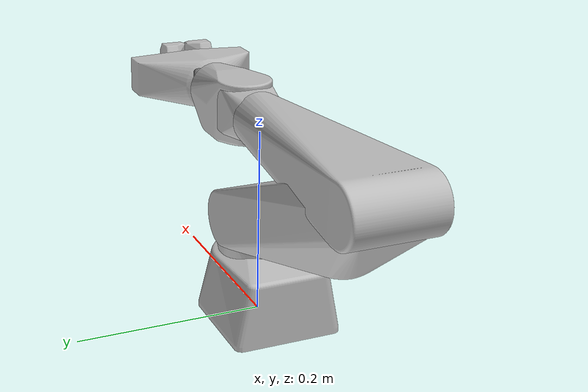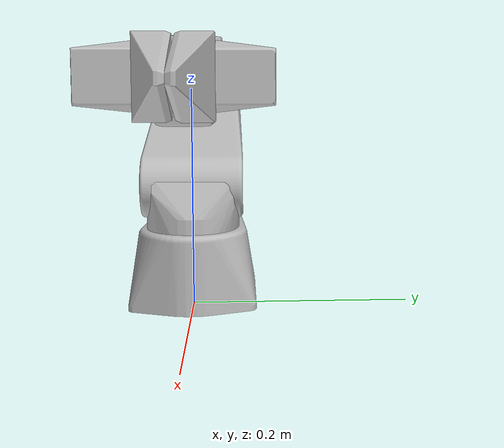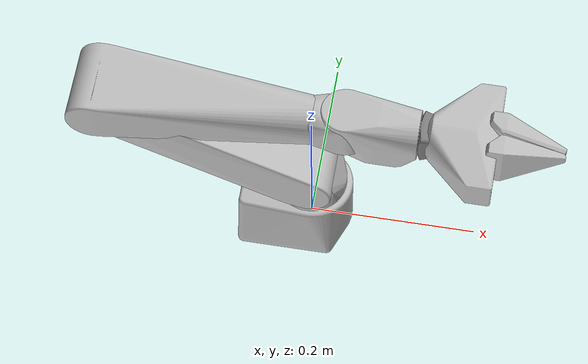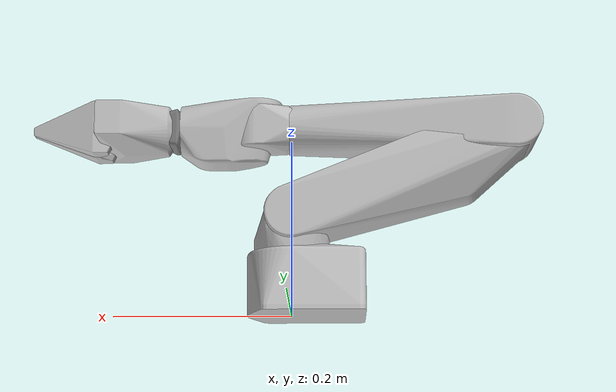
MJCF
<mujoco model="airbot_play_G2">
  <include file="airbot_config.xml"/>
  <tendon>
    <fixed name='gripper_gear'>
      <joint joint='G2_joint1' coef='-14.7059'/>
      <joint joint='G2_joint2' coef=' 14.7059'/>
    </fixed>
  </tendon>
  <equality>
    <joint joint1='G2_joint1' joint2='G2_joint2' polycoef='0 -1 0 0 0 '/>
  </equality>
  <worldbody>
    <geom type="mesh" contype="0" conaffinity="0" group="1" density="0" rgba="0.75294 0.75294 0.75294 1" mesh="base_link"/>
    <body name="link1" pos="0 0 0.1117">
      <inertial pos="5.65823e-05 -0.00254686 -0.0260161" quat="0.425246 0.565393 0.444998 0.549067" mass="0.609" diaginertia="0.000363812 0.000296936 0.000260542"/>
      <joint name="joint1" pos="0 0 0" axis="0 0 1" range="-3.151 2.089" actuatorfrcrange="-12 12"/>
      <geom type="mesh" rgba="0.75294 0.75294 0.75294 1" mesh="link1"/>
      <body name="link2" quat="0.136004 0.135754 -0.693387 0.69447">
        <inertial pos="0.150315 0.00717305 0.00160325" quat="-0.0035835 0.712028 0.029484 0.701523" mass="0.902" diaginertia="0.00338951 0.00317972 0.000396151"/>
        <joint name="joint2" pos="0 0 0" axis="0 0 1" range="-2.963 0.181" actuatorfrcrange="-12 12"/>
        <geom type="mesh" rgba="0.75294 0.75294 0.75294 1" mesh="link2"/>
        <body name="link3" pos="0.27009 0 0" quat="0.55806 -0.000659484 0.000443518 0.8298">
          <inertial pos="2.8745e-05 0.110064 0.00426641" quat="0.536553 0.458503 -0.460051 0.538739" mass="0.683" diaginertia="0.00112874 0.0011117 0.000205631"/>
          <joint name="joint3" pos="0 0 0" axis="0 0 1" range="-0.094 3.161" actuatorfrcrange="-12 12"/>
          <geom type="mesh" rgba="0.75294 0.75294 0.75294 1" mesh="link3"/>
          <body name="link4" pos="8.2128e-05 0.29015 0" quat="0.499998 -0.5 -0.5 -0.500002">
            <inertial pos="-4.38752e-05 0.000502807 -0.020529" quat="0.57802 0.407764 0.553627 0.439452" mass="0.358" diaginertia="0.000140287 0.000111206 0.000110237"/>
            <joint name="joint4" pos="0 0 0" axis="0 0 1" range="-3.012 3.012" actuatorfrcrange="-3 3"/>
            <geom type="mesh" rgba="0.75294 0.75294 0.75294 1" mesh="link4"/>
            <body name="link5" quat="0.707105 0.707108 0 0">
              <inertial pos="0.000107256 0.0376096 0.000942839" quat="0.657602 0.251011 -0.249099 0.665209" mass="0.403" diaginertia="0.00016511 0.000143238 0.000137102"/>
              <joint name="joint5" pos="0 0 0" axis="0 0 1" range="-1.859 1.859" actuatorfrcrange="-3 3"/>
              <geom type="mesh" rgba="0.75294 0.75294 0.75294 1" mesh="link5"/>
              <body name="link6" pos="0 0.0864 0" quat="0.707105 0 0 0.707108">
                <inertial pos="0.0455161 -2.59141e-06 -3.85647e-06" quat="0.500699 0.499028 -0.49836 0.501904" mass="1.00867" diaginertia="449.243 348.37 198.536"/>
                <joint name="joint6" pos="0 0 0" axis="1 0 0" range="-3.017 3.017" actuatorfrcrange="-3 3"/>
                <geom type="mesh" rgba="0.75294 0.75294 0.75294 1" mesh="link6"/>
                <geom pos="0.0040002 0.0219004 -0.0221024" quat="0.707107 0 -0.707107 0" type="mesh" mesh="flange"/>
                <geom pos="0.009 0 0" quat="1 0 0 0" type="mesh" rgba="0.75294 0.75294 0.75294 1" mesh="g2base"/>
                <body name="G2_link1" pos="0.0826 0.05 -0.015" quat="0.707105 0 0.707108 0">
                  <inertial pos="-0.015415 -0.066964 0.014312" quat="0.696231 0.0988988 -0.0674297 0.707767" mass="0.078003" diaginertia="55.8265 34.2061 25.688"/>
                  <joint name="G2_joint1" pos="0 0 0" axis="0 1 0" type="slide" range="-0.034 0" actuatorfrcrange="-3 3"/>
                  <geom type="mesh" rgba="0.75294 0.75294 0.75294 1" mesh="g2link1"/>
                </body>
                <body name="G2_link2" pos="0.0826 -0.05 -0.015" quat="0.707105 0 0.707108 0">
                  <inertial pos="-0.014585 0.066964 0.014312" quat="0.696231 -0.0988988 0.0674297 0.707767" mass="0.078003" diaginertia="55.8265 34.2061 25.688"/>
                  <joint name="G2_joint2" pos="0 0 0" axis="0 1 0" type="slide" range="0 0.034" actuatorfrcrange="-3 3"/>
                  <geom type="mesh" rgba="0.75294 0.75294 0.75294 1" mesh="g2link2"/>
                </body>
              </body>
            </body>
          </body>
        </body>
      </body>
    </body>
  </worldbody>

  <actuator>
    <position name="joint1_position"  ctrllimited="true" ctrlrange="-3.14 2.09"  joint="joint1"        kp="15.0" user="1" forcelimited="true" forcerange="-20 20"/>
    <position name="joint2_position"  ctrllimited="true" ctrlrange="-2.96 0.17"  joint="joint2"        kp="15.0" user="1" forcelimited="true" forcerange="-20 20"/>
    <position name="joint3_position"  ctrllimited="true" ctrlrange="-0.087 3.14" joint="joint3"        kp="15.0" user="1" forcelimited="true" forcerange="-20 20"/>
    <position name="joint4_position"  ctrllimited="true" ctrlrange="-2.96 2.96"  joint="joint4"        kp="2.5"  user="1" forcelimited="true" forcerange="-8 8"/>
    <position name="joint5_position"  ctrllimited="true" ctrlrange="-1.74 1.74"  joint="joint5"        kp="2.5"  user="1" forcelimited="true" forcerange="-8 8"/>
    <position name="joint6_position"  ctrllimited="true" ctrlrange="-3.14 3.14"  joint="joint6"        kp="2.5"  user="1" forcelimited="true" forcerange="-8 8"/>
    <position name='gripper_position' ctrllimited="true" ctrlrange="0. 1."       tendon='gripper_gear' kp="3"    user="1" forcelimited="true" forcerange="-1 1"/>

    <velocity name="joint1_velocity"  ctrllimited="true" ctrlrange="-6.283 6.283" joint="joint1"        kv="0.15"  user="1" forcelimited="true" forcerange="-20 20"/>
    <velocity name="joint2_velocity"  ctrllimited="true" ctrlrange="-6.283 6.283" joint="joint2"        kv="0.175" user="1" forcelimited="true" forcerange="-20 20"/>
    <velocity name="joint3_velocity"  ctrllimited="true" ctrlrange="-6.283 6.283" joint="joint3"        kv="0.15"  user="1" forcelimited="true" forcerange="-20 20"/>
    <velocity name="joint4_velocity"  ctrllimited="true" ctrlrange="-6.283 6.283" joint="joint4"        kv="0.05"  user="1" forcelimited="true" forcerange="-8 8"/>
    <velocity name="joint5_velocity"  ctrllimited="true" ctrlrange="-6.283 6.283" joint="joint5"        kv="0.15"  user="1" forcelimited="true" forcerange="-8 8"/>
    <velocity name="joint6_velocity"  ctrllimited="true" ctrlrange="-6.283 6.283" joint="joint6"        kv="0.05"  user="1" forcelimited="true" forcerange="-8 8"/>
    <velocity name='gripper_velocity' ctrllimited="true" ctrlrange="-6.283 6.283" tendon='gripper_gear' kv="0.05"  user="1" forcelimited="true" forcerange="-1 1"/>

    <motor name="joint1_motor"  ctrllimited="true" ctrlrange="-20 20" joint="joint1"        user="1" forcelimited="true" forcerange="-20 20"/>
    <motor name="joint2_motor"  ctrllimited="true" ctrlrange="-20 20" joint="joint2"        user="1" forcelimited="true" forcerange="-20 20"/>
    <motor name="joint3_motor"  ctrllimited="true" ctrlrange="-20 20" joint="joint3"        user="1" forcelimited="true" forcerange="-20 20"/>
    <motor name="joint4_motor"  ctrllimited="true" ctrlrange="-8 8"   joint="joint4"        user="1" forcelimited="true" forcerange="-8 8"/>
    <motor name="joint5_motor"  ctrllimited="true" ctrlrange="-8 8"   joint="joint5"        user="1" forcelimited="true" forcerange="-8 8"/>
    <motor name="joint6_motor"  ctrllimited="true" ctrlrange="-8 8"   joint="joint6"        user="1" forcelimited="true" forcerange="-8 8"/>
    <motor name='gripper_motor' ctrllimited="true" ctrlrange="-1 1"   tendon='gripper_gear' user="1" forcelimited="true" forcerange="-1 1"/>

  </actuator>

  <sensor>
    <jointpos name="joint1_pos" joint="joint1" />
    <jointpos name="joint2_pos" joint="joint2" />
    <jointpos name="joint3_pos" joint="joint3" />
    <jointpos name="joint4_pos" joint="joint4" />
    <jointpos name="joint5_pos" joint="joint5" />
    <jointpos name="joint6_pos" joint="joint6" />
    <tendonpos name="gripper_pos" tendon="gripper_gear" />
    <jointvel name="joint1_vel" joint="joint1" />
    <jointvel name="joint2_vel" joint="joint2" />
    <jointvel name="joint3_vel" joint="joint3" />
    <jointvel name="joint4_vel" joint="joint4" />
    <jointvel name="joint5_vel" joint="joint5" />
    <jointvel name="joint6_vel" joint="joint6" />
    <tendonvel name="gripper_vel" tendon="gripper_gear" />
    <jointactuatorfrc name="joint1_torque" joint="joint1" />
    <jointactuatorfrc name="joint2_torque" joint="joint2" />
    <jointactuatorfrc name="joint3_torque" joint="joint3" />
    <jointactuatorfrc name="joint4_torque" joint="joint4" />
    <jointactuatorfrc name="joint5_torque" joint="joint5" />
    <jointactuatorfrc name="joint6_torque" joint="joint6" />
    <jointactuatorfrc name="gripper_torque" joint="G2_joint2" />
  </sensor>

</mujoco>

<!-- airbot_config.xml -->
<mujocoinclude>

  <option integrator="RK4" solver="Newton" timestep="0.001"/>
  <compiler angle="radian" inertiafromgeom="auto" inertiagrouprange="4 5" meshdir="../../meshes/hil"/>

  <asset>
    <mesh name="base_link" file="airbot_play_v3_1/collision/base_link.STL"/>
    <mesh name="link1" file="airbot_play_v3_1/collision/link1.STL"/>
    <mesh name="link2" file="airbot_play_v3_1/collision/link2.STL"/>
    <mesh name="link3" file="airbot_play_v3_1/collision/link3.STL"/>
    <mesh name="link4" file="airbot_play_v3_1/collision/link4.STL"/>
    <mesh name="link5" file="airbot_play_v3_1/collision/link5.STL"/>
    <mesh name="link6" file="airbot_play_v3_1/collision/link6.STL"/>

    <mesh name="flange" file="flange/collision/flange.obj"/>
    <mesh name="g2base" file="G2/collision/base_link.STL"/>
    <mesh name="g2link1" file="G2/collision/link1.STL"/>
    <mesh name="g2link2" file="G2/collision/link2.STL"/>
    <mesh name="e2bbase" file="E2B/collision/base_link.STL"/>
    <mesh name="e2blink1" file="E2B/collision/link1.STL"/>
    <mesh name="e2blink2" file="E2B/collision/link2.STL"/>
    <mesh name="e2blink3" file="E2B/collision/link3.STL"/>
  </asset>

</mujocoinclude>
